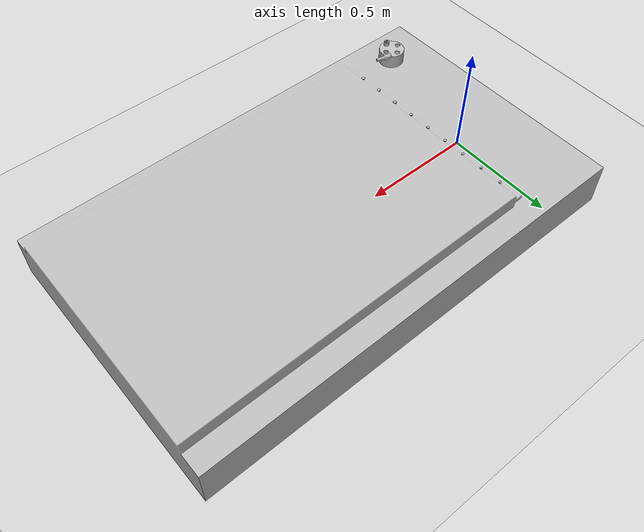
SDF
<sdf version="1.6">
 <world name="default">
  <plugin name="ros_link_attacher_plugin" filename="libgazebo_ros_link_attacher.so"/>
  <light name="sun" type="directional">
   <pose>0 0 10 0 -0 0</pose>
   <diffuse>0.8 0.8 0.8 1</diffuse>
   <specular>0.2 0.2 0.2 1</specular>
   <attenuation>
    <range>1000</range>
    <constant>0.9</constant>
    <linear>0.01</linear>
    <quadratic>0.001</quadratic>
   </attenuation>
   <direction>-0.5 0.1 -0.9</direction>
  </light>
  <model name="ground_plane">
   <static>1</static>
   <link name="link">
    <collision name="collision">
     <geometry><plane><normal>0 0 1</normal><size>100 100</size></plane></geometry>
     <surface>
      <contact><collide_bitmask>65535</collide_bitmask></contact>
      <friction><ode><mu>100</mu><mu2>50</mu2></ode></friction>
     </surface>
    </collision>
    <visual name="visual">
     <cast_shadows>0</cast_shadows>
     <geometry><plane><normal>0 0 1</normal><size>100 100</size></plane></geometry>
     <material>
      <script><uri>file://media/materials/scripts/gazebo.material</uri><name>Gazebo/Grey</name></script>
     </material>
    </visual>
   </link>
  </model>
  <gravity>0 0 -9.8</gravity>
  <magnetic_field>6e-06 2.3e-05 -4.2e-05</magnetic_field>
  <atmosphere type="adiabatic"/>
  <physics name="default_physics" default="0" type="ode">
   <max_step_size>0.001</max_step_size>
   <real_time_factor>1</real_time_factor>
   <real_time_update_rate>1000</real_time_update_rate>
  </physics>
  <scene><ambient>0.4 0.4 0.4 1</ambient><background>0.7 0.7 0.7 1</background><shadows>1</shadows></scene>
  <audio><device>default</device></audio>
  <spherical_coordinates>
   <surface_model>EARTH_WGS84</surface_model>
   <latitude_deg>0</latitude_deg>
   <longitude_deg>0</longitude_deg>
   <elevation>0</elevation>
   <heading_deg>0</heading_deg>
  </spherical_coordinates>
  <model name="M6_sleeve">
   <link name="M6_sleeve_base_link">
    <inertial>
     <pose>-0.00116 -0 0 0 -0 0</pose>
     <mass>0.010651</mass>
     <inertia>
      <ixx>8.1338e-07</ixx>
      <ixy>2.9592e-21</ixy>
      <ixz>-4.8249e-20</ixz>
      <iyy>3.3923e-06</iyy>
      <iyz>1.2184e-38</iyz>
      <izz>3.3923e-06</izz>
     </inertia>
    </inertial>
    <collision name="M6_sleeve_base_link_collision">
     <geometry>
      <mesh>
       <scale>1 1 1</scale>
       <uri>/home/ur/Desktop/gazebo_link_attacher_ws/src/M6_sleeve/meshes/M6_sleeve_base_link.STL</uri>
      </mesh>
     </geometry>
    </collision>
    <visual name="M6_sleeve_base_link_visual">
     <geometry>
      <mesh>
       <scale>1 1 1</scale>
       <uri>/home/ur/Desktop/gazebo_link_attacher_ws/src/M6_sleeve/meshes/M6_sleeve_base_link.STL</uri>
      </mesh>
     </geometry>
    </visual>
   </link>
   <pose>0.009414 -0.411991 0.258914 1.2408 1.57043 1.00866</pose>
  </model>
  <model name="battery_pack">
   <link name="battery_pack_base_link">
    <inertial>
     <pose>0.83961 0.000302 -0.074691 0 -0 0</pose>
     <mass>590.77</mass>
     <inertia>
      <ixx>68.5485</ixx>
      <ixy>-0.220609</ixy>
      <ixz>0.0533487</ixz>
      <iyy>184.834</iyy>
      <iyz>0.0280184</iyz>
      <izz>250.079</izz>
     </inertia>
    </inertial>
    <collision name="battery_pack_base_link_collision">
     <geometry>
      <mesh>
       <scale>1 1 1</scale>
       <uri>/home/ur/Desktop/gazebo_link_attacher_ws/src/battery_pack/meshes/battery_pack_base_link.STL</uri>
      </mesh>
     </geometry>
    </collision>
    <collision name="battery_pack_base_link_fixed_joint_lump__M10_1_Link_collision_1">
     <pose>0.2215 -0.196 0.051 0 -0 0</pose>
     <geometry>
      <mesh>
       <scale>1 1 1</scale>
       <uri>/home/ur/Desktop/gazebo_link_attacher_ws/src/battery_pack/meshes/M10_1_Link.STL</uri>
      </mesh>
     </geometry>
    </collision>
    <collision name="battery_pack_base_link_fixed_joint_lump__M10_2_Link_collision_2">
     <pose>0.2215 -0.296 0.051 0 -0 0</pose>
     <geometry>
      <mesh>
       <scale>1 1 1</scale>
       <uri>/home/ur/Desktop/gazebo_link_attacher_ws/src/battery_pack/meshes/M10_2_Link.STL</uri>
      </mesh>
     </geometry>
    </collision>
    <collision name="battery_pack_base_link_fixed_joint_lump__M10_3_Link_collision_3">
     <pose>0.2215 -0.396 0.051 0 -0 0</pose>
     <geometry>
      <mesh>
       <scale>1 1 1</scale>
       <uri>/home/ur/Desktop/gazebo_link_attacher_ws/src/battery_pack/meshes/M10_3_Link.STL</uri>
      </mesh>
     </geometry>
    </collision>
    <collision name="battery_pack_base_link_fixed_joint_lump__M6_1_Link_collision_4">
     <pose>0.2215 0.404 0.051 0 -0 0</pose>
     <geometry>
      <mesh>
       <scale>1 1 1</scale>
       <uri>/home/ur/Desktop/gazebo_link_attacher_ws/src/battery_pack/meshes/M6_1_Link.STL</uri>
      </mesh>
     </geometry>
    </collision>
    <collision name="battery_pack_base_link_fixed_joint_lump__M6_2_Link_collision_5">
     <pose>0.2215 0.304 0.051 0 -0 0</pose>
     <geometry>
      <mesh>
       <scale>1 1 1</scale>
       <uri>/home/ur/Desktop/gazebo_link_attacher_ws/src/battery_pack/meshes/M6_2_Link.STL</uri>
      </mesh>
     </geometry>
    </collision>
    <collision name="battery_pack_base_link_fixed_joint_lump__M6_3_Link_collision_6">
     <pose>0.2215 0.204 0.051 0 -0 0</pose>
     <geometry>
      <mesh>
       <scale>1 1 1</scale>
       <uri>/home/ur/Desktop/gazebo_link_attacher_ws/src/battery_pack/meshes/M6_3_Link.STL</uri>
      </mesh>
     </geometry>
    </collision>
    <collision name="battery_pack_base_link_fixed_joint_lump__M8_1_Link_collision_7">
     <pose>0.2215 0.104 0.051 0 -0 0</pose>
     <geometry>
      <mesh>
       <scale>1 1 1</scale>
       <uri>/home/ur/Desktop/gazebo_link_attacher_ws/src/battery_pack/meshes/M8_1_Link.STL</uri>
      </mesh>
     </geometry>
    </collision>
    <collision name="battery_pack_base_link_fixed_joint_lump__M8_2_Link_collision_8">
     <pose>0.2215 0.004 0.051 0 -0 0</pose>
     <geometry>
      <mesh>
       <scale>1 1 1</scale>
       <uri>/home/ur/Desktop/gazebo_link_attacher_ws/src/battery_pack/meshes/M8_2_Link.STL</uri>
      </mesh>
     </geometry>
    </collision>
    <collision name="battery_pack_base_link_fixed_joint_lump__M8_3_Link_collision_9">
     <pose>0.2215 -0.096 0.051 0 -0 0</pose>
     <geometry>
      <mesh>
       <scale>1 1 1</scale>
       <uri>/home/ur/Desktop/gazebo_link_attacher_ws/src/battery_pack/meshes/M8_3_Link.STL</uri>
      </mesh>
     </geometry>
    </collision>
    <collision name="battery_pack_base_link_fixed_joint_lump__sleeve_plate_Link_collision_10">
     <pose>0 -0.45 0.065 0 -0 0</pose>
     <geometry>
      <mesh>
       <scale>1 1 1</scale>
       <uri>/home/ur/Desktop/gazebo_link_attacher_ws/src/battery_pack/meshes/sleeve_plate_Link.STL</uri>
      </mesh>
     </geometry>
    </collision>
    <visual name="battery_pack_base_link_visual">
     <geometry>
      <mesh>
       <scale>1 1 1</scale>
       <uri>/home/ur/Desktop/gazebo_link_attacher_ws/src/battery_pack/meshes/battery_pack_base_link.STL</uri>
      </mesh>
     </geometry>
    </visual>
    <visual name="battery_pack_base_link_fixed_joint_lump__M10_1_Link_visual_1">
     <pose>0.2215 -0.196 0.051 0 -0 0</pose>
     <geometry>
      <mesh>
       <scale>1 1 1</scale>
       <uri>/home/ur/Desktop/gazebo_link_attacher_ws/src/battery_pack/meshes/M10_1_Link.STL</uri>
      </mesh>
     </geometry>
    </visual>
    <visual name="battery_pack_base_link_fixed_joint_lump__M10_2_Link_visual_2">
     <pose>0.2215 -0.296 0.051 0 -0 0</pose>
     <geometry>
      <mesh>
       <scale>1 1 1</scale>
       <uri>/home/ur/Desktop/gazebo_link_attacher_ws/src/battery_pack/meshes/M10_2_Link.STL</uri>
      </mesh>
     </geometry>
    </visual>
    <visual name="battery_pack_base_link_fixed_joint_lump__M10_3_Link_visual_3">
     <pose>0.2215 -0.396 0.051 0 -0 0</pose>
     <geometry>
      <mesh>
       <scale>1 1 1</scale>
       <uri>/home/ur/Desktop/gazebo_link_attacher_ws/src/battery_pack/meshes/M10_3_Link.STL</uri>
      </mesh>
     </geometry>
    </visual>
    <visual name="battery_pack_base_link_fixed_joint_lump__M6_1_Link_visual_4">
     <pose>0.2215 0.404 0.051 0 -0 0</pose>
     <geometry>
      <mesh>
       <scale>1 1 1</scale>
       <uri>/home/ur/Desktop/gazebo_link_attacher_ws/src/battery_pack/meshes/M6_1_Link.STL</uri>
      </mesh>
     </geometry>
    </visual>
    <visual name="battery_pack_base_link_fixed_joint_lump__M6_2_Link_visual_5">
     <pose>0.2215 0.304 0.051 0 -0 0</pose>
     <geometry>
      <mesh>
       <scale>1 1 1</scale>
       <uri>/home/ur/Desktop/gazebo_link_attacher_ws/src/battery_pack/meshes/M6_2_Link.STL</uri>
      </mesh>
     </geometry>
    </visual>
    <visual name="battery_pack_base_link_fixed_joint_lump__M6_3_Link_visual_6">
     <pose>0.2215 0.204 0.051 0 -0 0</pose>
     <geometry>
      <mesh>
       <scale>1 1 1</scale>
       <uri>/home/ur/Desktop/gazebo_link_attacher_ws/src/battery_pack/meshes/M6_3_Link.STL</uri>
      </mesh>
     </geometry>
    </visual>
    <visual name="battery_pack_base_link_fixed_joint_lump__M8_1_Link_visual_7">
     <pose>0.2215 0.104 0.051 0 -0 0</pose>
     <geometry>
      <mesh>
       <scale>1 1 1</scale>
       <uri>/home/ur/Desktop/gazebo_link_attacher_ws/src/battery_pack/meshes/M8_1_Link.STL</uri>
      </mesh>
     </geometry>
    </visual>
    <visual name="battery_pack_base_link_fixed_joint_lump__M8_2_Link_visual_8">
     <pose>0.2215 0.004 0.051 0 -0 0</pose>
     <geometry>
      <mesh>
       <scale>1 1 1</scale>
       <uri>/home/ur/Desktop/gazebo_link_attacher_ws/src/battery_pack/meshes/M8_2_Link.STL</uri>
      </mesh>
     </geometry>
    </visual>
    <visual name="battery_pack_base_link_fixed_joint_lump__M8_3_Link_visual_9">
     <pose>0.2215 -0.096 0.051 0 -0 0</pose>
     <geometry>
      <mesh>
       <scale>1 1 1</scale>
       <uri>/home/ur/Desktop/gazebo_link_attacher_ws/src/battery_pack/meshes/M8_3_Link.STL</uri>
      </mesh>
     </geometry>
    </visual>
    <visual name="battery_pack_base_link_fixed_joint_lump__sleeve_plate_Link_visual_10">
     <pose>0 -0.45 0.065 0 -0 0</pose>
     <geometry>
      <mesh>
       <scale>1 1 1</scale>
       <uri>/home/ur/Desktop/gazebo_link_attacher_ws/src/battery_pack/meshes/sleeve_plate_Link.STL</uri>
      </mesh>
     </geometry>
    </visual>
   </link>
   <pose>0.005911 0.002186 0.2 0 -0 0.008226</pose>
  </model>
  <model name="M10_sleeve">
   <link name="M10_sleeve_base_link">
    <inertial>
     <pose>-0.000367 0 -0 0 -0 0</pose>
     <mass>0.010807</mass>
     <inertia>
      <ixx>9.0447e-07</ixx>
      <ixy>-5.476e-21</ixy>
      <ixz>9.2286e-20</ixz>
      <iyy>3.7372e-06</iyy>
      <iyz>2.1176e-22</iyz>
      <izz>3.7372e-06</izz>
     </inertia>
    </inertial>
    <collision name="M10_sleeve_base_link_collision">
     <geometry>
      <mesh>
       <scale>1 1 1</scale>
       <uri>/home/ur/Desktop/gazebo_link_attacher_ws/src/M10_sleeve/meshes/M10_sleeve_base_link.STL</uri>
      </mesh>
     </geometry>
    </collision>
    <visual name="M10_sleeve_base_link_visual">
     <geometry>
      <mesh>
       <scale>1 1 1</scale>
       <uri>/home/ur/Desktop/gazebo_link_attacher_ws/src/M10_sleeve/meshes/M10_sleeve_base_link.STL</uri>
      </mesh>
     </geometry>
    </visual>
   </link>
   <pose>0.009854 -0.483511 0.258926 0.819631 1.57072 -0.787063</pose>
  </model>
 </world>
</sdf>
